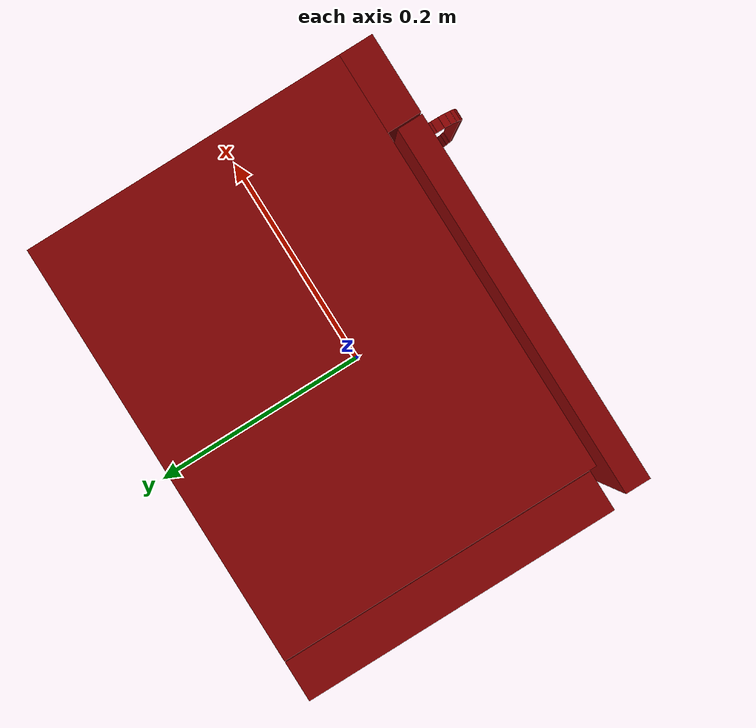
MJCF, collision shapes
<mujoco model="model">
  <compiler angle="radian"/>
  <asset>
    <mesh file="visuals/door.obj" name="door_vis"/>
    <mesh file="visuals/door_Clear.obj" name="door_Clear_vis"/>
    <mesh file="visuals/Body001.obj" name="Body001_vis"/>
    <mesh file="visuals/Disc001.obj" name="Disc001_vis"/>
    <texture file="visuals/T_BC001.png" name="Body001_material" type="2d"/>
    <material name="Body001_material" rgba="1 1 1 1.0" texture="Body001_material" shininess="0.4472135901451111" specular="1"/>
    <texture file="visuals/T_BC001.png" name="door_material" type="2d"/>
    <material name="door_material" rgba="1 1 1 1.0" texture="door_material" shininess="0.4472135901451111" specular="1"/>
    <texture file="visuals/T_BC001.png" name="door_Clear_material" type="2d"/>
    <material name="door_Clear_material" rgba="1 1 1 0.8999999761581421" texture="door_Clear_material" shininess="0.4472135901451111" specular="1"/>
    <texture file="visuals/T_BC001.png" name="Disc001_material" type="2d"/>
    <material name="Disc001_material" rgba="1 1 1 1.0" texture="Disc001_material" shininess="0.4472135901451111" specular="1"/>
  </asset>
  <default>
    <default class="visual">
      <geom conaffinity="0" contype="0" group="1" type="mesh"/>
    </default>
    <default class="collision">
      <geom group="0" rgba="0.5 0 0 0.5"/>
    </default>
    <default class="spawn">
      <geom group="0" rgba="1 1 1 0.5" contype="0" conaffinity="0"/>
      <site group="0" rgba="1 1 1 0.5"/>
    </default>
    <default class="region">
      <geom group="1" conaffinity="0" contype="0" rgba="0 1 0 0"/>
    </default>
  </default>
  <worldbody>
    <body>
      <body name="object">
        <geom class="collision" type="box" pos="-0.03636551275849342 0.009838864207267761 -0.0665702372789383" size="0.11146734654903412 0.11318691074848175 0.0010362376924604177" quat="1.0 0.0 0.0 0.0" name="tray" rgba="0 1 0 0.5"/>
        <geom class="collision" type="box" pos="0.16379722952842712 -0.14703530073165894 -0.08088003844022751" size="0.007899247109889984 0.0003051722887903452 0.00369465840049088" quat="1.0 0.0 0.0 0.0" name="stop_button" rgba="0.0 0.5 0 0.5"/>
        <geom class="collision" type="box" pos="0.1869337260723114 -0.14703530073165894 -0.08088003844022751" size="0.007899250835180283 0.000305172405205667 0.0036946600303053856" quat="1.0 0.0 0.0 0.0" name="start_button" rgba="0.0 0.5 0 0.5"/>
        <geom mesh="Body001_vis" type="mesh" solimp="0.998 0.998 0.001" solref="0.001 1" density="100" friction="0.95 0.3 0.1" class="visual" material="Body001_material"/>
        <geom class="collision" type="box" pos="0.018791131675243378 0.03180336579680443 -0.09959933161735535" size="0.19373486936092377 0.14701543748378754 0.027904359623789787" quat="1.0 0.0 0.0 0.0"/>
        <geom class="collision" type="box" pos="0.018791131675243378 0.03180336579680443 0.10421013832092285" size="0.19373486936092377 0.14701543748378754 0.02343263104557991" quat="1.0 0.0 0.0 0.0"/>
        <geom class="collision" type="box" pos="-0.19416449964046478 0.03501163423061371 6.953533738851547e-05" size="0.01836172118782997 0.14380718767642975 0.12757323682308197" quat="1.0 0.0 0.0 0.0"/>
        <geom class="collision" type="box" pos="0.15654659271240234 0.03180336579680443 0.004541270434856415" size="0.0559794120490551 0.14701543748378754 0.07623624056577682" quat="1.0 0.0 0.0 0.0"/>
        <geom class="collision" type="box" pos="-0.037617795169353485 0.15067614614963531 0.004541270434856415" size="0.13818496465682983 0.0281426589936018 0.07623624056577682" quat="1.0 0.0 0.0 0.0"/>
        <geom class="collision" type="box" pos="0.17571911215782166 -0.13088573515415192 0.0038172851782292128" size="0.03680688887834549 0.015673667192459106 0.12382548302412033" quat="1.0 0.0 0.0 0.0"/>
        <geom class="collision" type="cylinder" pos="-0.1736367642879486 0.0008884384296834469 0.00873629655689001" size="0.049335919320583344 0.0018317922949790955" quat="0.7071068286895752 -0.0 0.7071067690849304 0.0"/>
        <body name="door">
          <joint axis="0.0 0.0 1.0" pos="-0.19490347802639008 -0.13214513659477234 0.003795334603637457" limited="true" name="microjoint" range="-1.5707963267948966 0.0" type="hinge" damping="1" frictionloss="1" armature=".01" stiffness="0.05"/>
          <geom mesh="door_vis" type="mesh" solimp="0.998 0.998 0.001" solref="0.001 1" density="100" friction="0.95 0.3 0.1" class="visual" material="door_material"/>
          <geom class="collision" type="box" pos="-0.03461475670337677 -0.13503505289554596 0.003286900231614709" size="0.17200621962547302 0.011605629697442055 0.1233435869216919" quat="1.0 0.0 0.0 0.0"/>
          <geom class="collision" type="box" pos="0.12603279948234558 -0.17740680277347565 0.01427589450031519" size="0.005254993215203285 0.0014122388092800975 0.062476806342601776" quat="1.0 0.0 0.0 0.0" name="door_handle"/>
          <geom class="collision" type="box" pos="0.12603279948234558 -0.14955738186836243 0.0978788435459137" size="0.0052550071850419044 0.002864970825612545 0.001412239857017994" quat="1.0 0.0 0.0 0.0"/>
          <geom class="collision" type="box" pos="0.12603279948234558 -0.1557542085647583 0.09720427542924881" size="0.0052550071850419044 0.0035753746051341295 0.001412239740602672" quat="0.9961947202682495 0.08715573698282242 0.0 0.0"/>
          <geom class="collision" type="box" pos="0.12603279948234558 -0.16232790052890778 0.09527873247861862" size="0.0052550071850419044 0.0035753746051341295 0.001412239857017994" quat="0.9762960076332092 0.2164396047592163 0.0 0.0"/>
          <geom class="collision" type="box" pos="0.12603279948234558 -0.16795040667057037 0.09179335087537766" size="0.0052550071850419044 0.0035753746051341295 0.001412239857017994" quat="0.9396926164627075 0.3420201539993286 0.0 0.0"/>
          <geom class="collision" type="box" pos="0.12603279948234558 -0.17258590459823608 0.08685877174139023" size="0.0052550071850419044 0.003575374837964773 0.001412239857017994" quat="0.8870107531547546 0.46174874901771545 0.0 0.0"/>
          <geom class="collision" type="box" pos="0.12603279948234558 -0.17569993436336517 0.08061955124139786" size="0.0052550071850419044 0.0035753746051341295 0.001412239857017994" quat="0.8191520571708679 0.5735764503479004 0.0 0.0"/>
          <geom class="collision" type="box" pos="0.12603279948234558 -0.17569993436336517 -0.05230771377682686" size="0.0052550071850419044 0.0035753746051341295 0.001412239857017994" quat="0.8191520571708679 -0.5735764503479004 -0.0 0.0"/>
          <geom class="collision" type="box" pos="0.12603279948234558 -0.17258590459823608 -0.05854693427681923" size="0.0052550071850419044 0.003575374837964773 0.001412239857017994" quat="0.8870107531547546 -0.46174874901771545 -0.0 0.0"/>
          <geom class="collision" type="box" pos="0.12603279948234558 -0.16795040667057037 -0.06348151713609695" size="0.0052550071850419044 0.0035753746051341295 0.001412239857017994" quat="0.9396926164627075 -0.3420201539993286 -0.0 0.0"/>
          <geom class="collision" type="box" pos="0.12603279948234558 -0.1557542085647583 -0.06889244168996811" size="0.0052550071850419044 0.0035753746051341295 0.001412239740602672" quat="0.9961947202682495 -0.08715573698282242 -0.0 0.0"/>
          <geom class="collision" type="box" pos="0.12603279948234558 -0.16232790052890778 -0.06696689873933792" size="0.0052550071850419044 0.0035753746051341295 0.001412239857017994" quat="0.9762960076332092 -0.2164396047592163 -0.0 0.0"/>
          <geom class="collision" type="box" pos="0.12603279948234558 -0.14955738186836243 -0.0695670023560524" size="0.0052550071850419044 0.002864970825612545 0.001412239857017994" quat="1.0 0.0 0.0 0.0"/>
          <body name="door_Clear">
            <geom mesh="door_Clear_vis" type="mesh" solimp="0.998 0.998 0.001" solref="0.001 1" density="100" friction="0.95 0.3 0.1" class="visual" material="door_Clear_material"/>
            <geom class="collision" type="box" pos="-0.03762907534837723 -0.1422935575246811 0.003795329947024584" size="0.13983526825904846 0.0009526921785436571 0.07724489271640778" quat="1.0 0.0 0.0 0.0"/>
          </body>
        </body>
        <body name="Disc001">
          <joint axis="0.0 0.0 -1.0" pos="-0.036365509033203125 0.009838864207267761 -0.07034800201654434" limited="false" name="Disc001_joint" range="0 360" type="hinge" damping="1" frictionloss="1" armature=".01" stiffness="0.05"/>
          <geom mesh="Disc001_vis" type="mesh" solimp="0.998 0.998 0.001" solref="0.001 1" density="100" friction="0.95 0.3 0.1" class="visual" material="Disc001_material"/>
          <geom class="collision" type="cylinder" pos="-0.03636551275849342 0.009838864207267761 -0.06935924291610718" size="0.11146734654903412 0.001351660117506981" quat="1.0 0.0 0.0 0.0"/>
        </body>
        <geom class="region" name="reg_main" type="box" pos="0.0 0.016092151403427124 0.0" size="0.21252620220184326 0.16272689402103424 0.12764734029769897"/>
        <geom class="region" name="reg_int" type="box" pos="-0.03802519664168358 0.004330195486545563 0.0035058483481407166" size="0.13771483674645424 0.1168738454580307 0.07589094340801239"/>
      </body>
    </body>
  </worldbody>
  <actuator>
    <motor name="microjoint_actuator" joint="microjoint" gear="10"/>
    <motor name="Disc001_joint_actuator" joint="Disc001_joint" gear="10"/>
  </actuator>
</mujoco>
